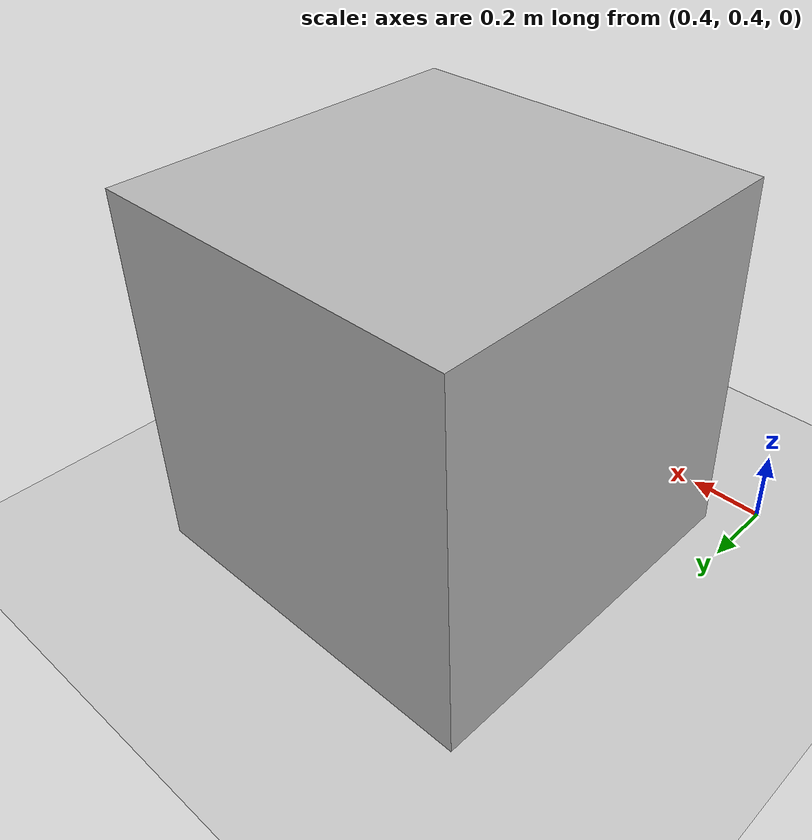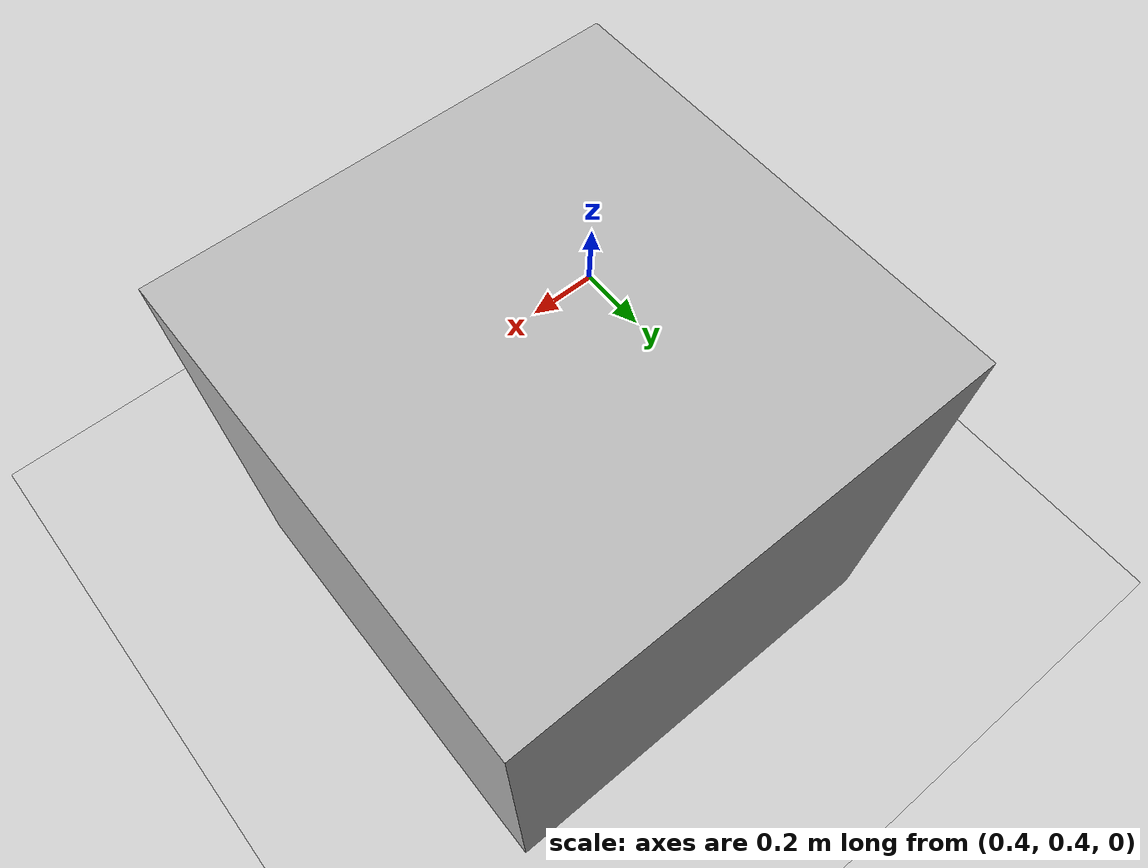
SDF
<?xml version="1.0"?>
<sdf version="1.9" xmlns:xsi="http://www.w3.org/2001/XMLSchema-instance"
    xsi:noNamespaceSchemaLocation="http://sdformat.org/schemas/root.xsd">
    <world name="gazebo_world">

        <physics name="default_physics" default="1" type="ode">
          <!-- Paso de simulación -->
          <max_step_size>0.001</max_step_size>
          <!-- Tasa de actualización del motor (física real-time) -->
          <real_time_update_rate>1000</real_time_update_rate>
          <!-- (Opcional) Control de iteraciones de solver -->
          <max_contacts>20</max_contacts>
          <gravity>0 0 -9.81</gravity>
        </physics>
        <plugin name="gz::sim::systems::Sensors" filename="gz-sim-sensors-system">
          <render_engine>ogre2</render_engine>
        </plugin>
        <plugin
            filename="gz-sim-physics-system"
            name="gz::sim::systems::Physics">
        </plugin>
        <plugin
            filename="gz-sim-user-commands-system"
            name="gz::sim::systems::UserCommands">
        </plugin>
        <plugin
            filename="gz-sim-scene-broadcaster-system"
            name="gz::sim::systems::SceneBroadcaster">
        </plugin>
        <plugin
            filename="gz-sim-contact-system"
            name="gz::sim::systems::Contact">
        </plugin>
        <plugin name="gz::sim::systems::Imu" filename="gz-sim-imu-system">
        </plugin>

        <scene>
            <ambient>1 1 1 1</ambient>
            <background>0.3 0.7 0.9 1</background>
            <shadows>1</shadows>
            <grid>0</grid>
        </scene>
        <gui fullscreen="0">

      <!-- 3D scene -->
      <plugin filename="GzScene3D" name="3D View">
        <ignition-gui>
          <title>3D View</title>
          <property type="bool" key="showTitleBar">false</property>
          <property type="string" key="state">docked</property>
        </ignition-gui>

        <engine>ogre2</engine>
        <scene>scene</scene>
        <ambient_light>0.4 0.4 0.4</ambient_light>
        <background_color>0.8 0.8 0.8</background_color>
        <camera_pose>-0.7 0.7 0.7 0 0.3 -0.3</camera_pose>
      </plugin>

      <!-- Play / pause / step -->
      <plugin filename="WorldControl" name="World control">
        <ignition-gui>
          <title>World control</title>
          <property type="bool" key="showTitleBar">false</property>
          <property type="bool" key="resizable">false</property>
          <property type="double" key="height">72</property>
          <property type="double" key="width">121</property>
          <property type="double" key="z">1</property>

          <property type="string" key="state">floating</property>
          <anchors target="3D View">
            <line own="left" target="left"/>
            <line own="bottom" target="bottom"/>
          </anchors>
        </ignition-gui>

        <play_pause>true</play_pause>
        <step>true</step>
        <start_paused>true</start_paused>

      </plugin>

      <!-- Time / RTF -->
      <plugin filename="WorldStats" name="World stats">
        <ignition-gui>
          <title>World stats</title>
          <property type="bool" key="showTitleBar">false</property>
          <property type="bool" key="resizable">false</property>
          <property type="double" key="height">110</property>
          <property type="double" key="width">290</property>
          <property type="double" key="z">1</property>

          <property type="string" key="state">floating</property>
          <anchors target="3D View">
            <line own="right" target="right"/>
            <line own="bottom" target="bottom"/>
          </anchors>
        </ignition-gui>

        <sim_time>true</sim_time>
        <real_time>true</real_time>
        <real_time_factor>true</real_time_factor>
        <iterations>true</iterations>

      </plugin>

      <!-- Insert simple shapes -->
      <plugin filename="Shapes" name="Shapes">
        <ignition-gui>
          <property key="resizable" type="bool">false</property>
          <property key="x" type="double">0</property>
          <property key="y" type="double">0</property>
          <property key="width" type="double">250</property>
          <property key="height" type="double">50</property>
          <property key="state" type="string">floating</property>
          <property key="showTitleBar" type="bool">false</property>
          <property key="cardBackground" type="string">#666666</property>
        </ignition-gui>
      </plugin>

      <!-- Insert lights -->
      <plugin filename="Lights" name="Lights">
        <ignition-gui>
          <property key="resizable" type="bool">false</property>
          <property key="x" type="double">250</property>
          <property key="y" type="double">0</property>
          <property key="width" type="double">150</property>
          <property key="height" type="double">50</property>
          <property key="state" type="string">floating</property>
          <property key="showTitleBar" type="bool">false</property>
          <property key="cardBackground" type="string">#666666</property>
        </ignition-gui>
      </plugin>

      <!-- Translate / rotate -->
      <plugin filename="TransformControl" name="Transform control">
        <ignition-gui>
          <property key="resizable" type="bool">false</property>
          <property key="x" type="double">0</property>
          <property key="y" type="double">50</property>
          <property key="width" type="double">250</property>
          <property key="height" type="double">50</property>
          <property key="state" type="string">floating</property>
          <property key="showTitleBar" type="bool">false</property>
          <property key="cardBackground" type="string">#777777</property>
        </ignition-gui>
      </plugin>

      <!-- Screenshot -->
      <plugin filename="Screenshot" name="Screenshot">
        <ignition-gui>
          <property key="resizable" type="bool">false</property>
          <property key="x" type="double">250</property>
          <property key="y" type="double">50</property>
          <property key="width" type="double">50</property>
          <property key="height" type="double">50</property>
          <property key="state" type="string">floating</property>
          <property key="showTitleBar" type="bool">false</property>
          <property key="cardBackground" type="string">#777777</property>
        </ignition-gui>
      </plugin>

      <!-- Entity tree -->
      <plugin filename="EntityTree" name="Entity tree">
        <ignition-gui>
          <property type="string" key="state">docked_collapsed</property>
        </ignition-gui>
      </plugin>

      <!-- Inspector -->
      <plugin filename="ComponentInspector" name="Component inspector">
        <ignition-gui>
          <property type="string" key="state">docked_collapsed</property>
        </ignition-gui>
      </plugin>

      <plugin filename="TopicViewer" name="Topic Viewer">
        <ignition-gui>
            <property type="string" key="state">docked_collapsed</property>
        </ignition-gui>
      </plugin>
      <plugin filename="TopicEcho" name="Topic echo">
        <ignition-gui>
            <property type="string" key="state">docked_collapsed</property>
        </ignition-gui>
      </plugin>

          <!-- Apply Force / Torque tool -->
    <plugin filename="ApplyForceTorque" name="Apply Force Torque">
      <ignition-gui>
        <!-- docked | floating | collapsed -->
        <property key="state" type="string">floating</property>
      </ignition-gui>
    </plugin>

    </gui>

        <light type="directional" name="sun">
            <cast_shadows>true</cast_shadows>
            <pose>0 0 10 0 0 0</pose>
            <diffuse>0.8 0.8 0.8 1</diffuse>
            <specular>0.2 0.2 0.2 1</specular>
            <attenuation>
                <range>1000</range>
                <constant>0.9</constant>
                <linear>0.01</linear>
                <quadratic>0.001</quadratic>
            </attenuation>
            <direction>-0.5 0.1 -0.9</direction>
        </light>

        <model name="ground_plane">
            <static>true</static>
            <link name="link">
                <collision name="collision">
                <geometry>
                    <plane>
                    <normal>0 0 1</normal>
                    <size>100 100</size>
                    </plane>
                </geometry>
                <surface>
                  <friction>
                    <ode>
                      <mu>0.0034</mu>
                      <mu2>0.0034</mu2>
                    </ode>
                  </friction>
                </surface>

                </collision>
                <visual name="visual">
                <geometry>
                    <plane>
                    <normal>0 0 1</normal>
                    <size>100 100</size>
                    </plane>
                </geometry>
                <material>
                    <ambient>0.8 0.8 0.8 1</ambient>
                    <diffuse>0.8 0.8 0.8 1</diffuse>
                    <specular>0.8 0.8 0.8 1</specular>
                </material>
                </visual>
            </link>
            <plugin filename="libjaeger_model" name="gz::sim::system::HelloWorld">
              <ras_param>Hola mundo</ras_param>
              <ras_param1>2.0</ras_param1>
              <ras_param2>2</ras_param2>
              <ras_param_pose>1.0 2.0 3.0</ras_param_pose>
              <ras_param_pose_t>1.0 2.0 3.0 0.0 0.0 0.0</ras_param_pose_t>
              <topic>ras/first_example</topic>
          </plugin>
        </model>
        <model name="box_6kg">
          <!-- No es estática, para que responda a fuerzas -->
          <static>false</static>

          <link name="link">
            <!-- Posición inicial (x y z en metros, roll pitch yaw en radianes) -->
            <pose>1 1 0.5 0 0 0</pose>

            <!-- Propiedades inerciales: masa e inercia manual -->
            <inertial>
              <mass>100.0</mass>
              <inertia>
                <ixx>1.0</ixx>
                <ixy>0.0</ixy>
                <ixz>0.0</ixz>
                <iyy>1.0</iyy>
                <iyz>0.0</iyz>
                <izz>1.0</izz>
              </inertia>
            </inertial>

            <!-- Colisión: caja de 1×1×1 m -->
            <collision name="collision">
              <geometry>
                <box>
                  <size>1.0 1.0 1.0</size>
                </box>
              </geometry>
            </collision>

            <!-- Visual: misma geometría para verse en la simulación -->
            <visual name="visual">
              <geometry>
                <box>
                  <size>1.0 1.0 1.0</size>
                </box>
              </geometry>
            </visual>
          </link>
        </model>
    </world>
</sdf>
